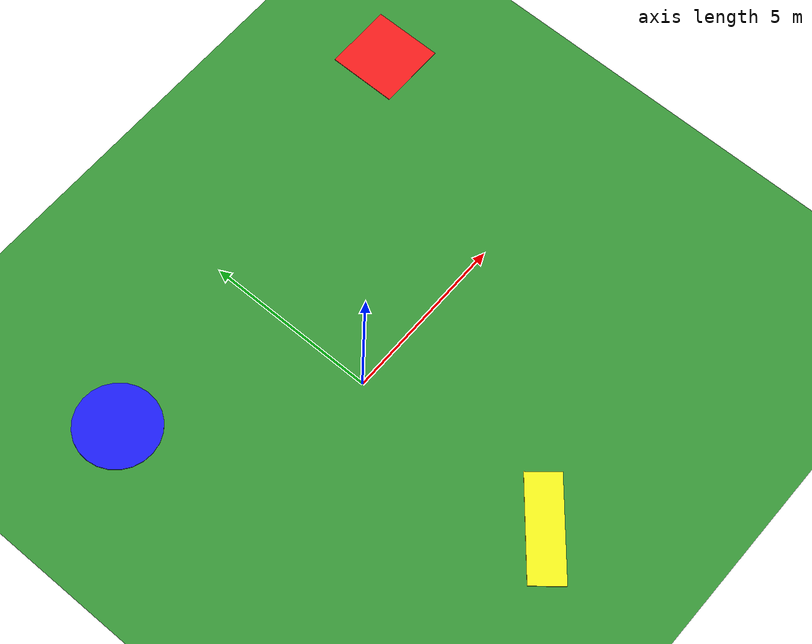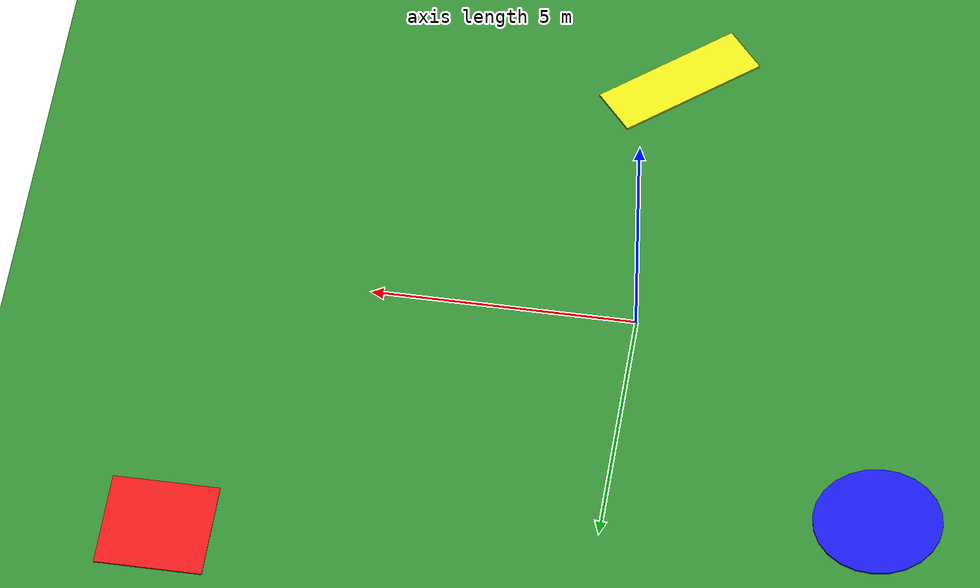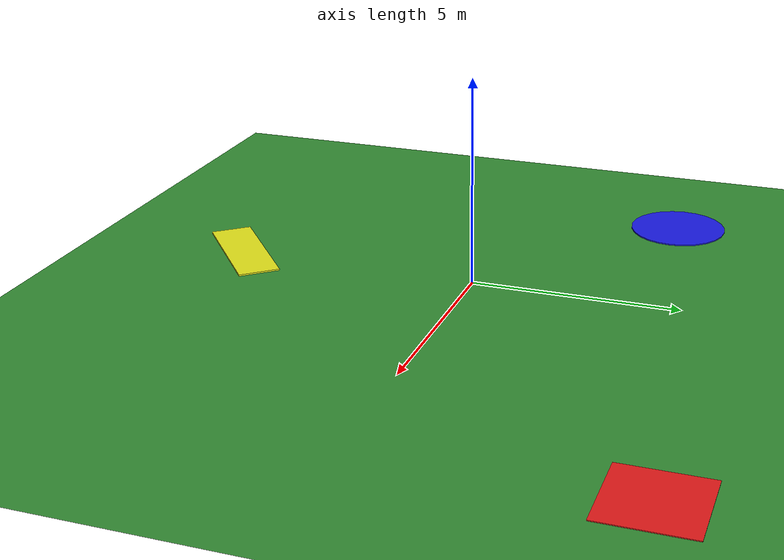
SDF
<?xml version="1.0"?>
<sdf version="1.9">
  <world name="mosaic_world">
    <plugin filename="gz-sim-physics-system" name="gz::sim::systems::Physics"/>
    <plugin filename="gz-sim-scene-broadcaster-system" name="gz::sim::systems::SceneBroadcaster"/>
    <plugin filename="gz-sim-sensors-system" name="gz::sim::systems::Sensors">
      <render_engine>ogre2</render_engine>
    </plugin>
    <plugin filename="gz-sim-user-commands-system" name="gz::sim::systems::UserCommands"/>

    <light name="sun" type="directional">
      <cast_shadows>true</cast_shadows>
      <pose>0 0 30 0 0 0</pose>
      <diffuse>0.9 0.9 0.9 1</diffuse>
      <specular>0.1 0.1 0.1 1</specular>
      <attenuation>
        <range>1000</range>
        <constant>0.9</constant>
        <linear>0.01</linear>
        <quadratic>0.001</quadratic>
      </attenuation>
      <direction>-0.5 0.2 -1</direction>
    </light>

    <model name="ground_plane">
      <static>true</static>
      <link name="ground_link">
        <collision name="collision">
          <geometry>
            <plane>
              <normal>0 0 1</normal>
              <size>80 80</size>
            </plane>
          </geometry>
        </collision>
        <visual name="visual">
          <geometry>
            <plane>
              <normal>0 0 1</normal>
              <size>80 80</size>
            </plane>
          </geometry>
          <material>
            <ambient>0.2 0.55 0.2 1</ambient>
            <diffuse>0.2 0.55 0.2 1</diffuse>
          </material>
        </visual>
      </link>
    </model>

    <model name="marker_a">
      <static>true</static>
      <pose>8 6 0.01 0 0 0</pose>
      <link name="link">
        <visual name="visual">
          <geometry><box><size>2.0 2.0 0.02</size></box></geometry>
          <material><ambient>0.9 0.1 0.1 1</ambient><diffuse>0.9 0.1 0.1 1</diffuse></material>
        </visual>
      </link>
    </model>

    <model name="marker_b">
      <static>true</static>
      <pose>-5 4 0.02 0 0 0.3</pose>
      <link name="link">
        <visual name="visual">
          <geometry><cylinder><radius>1.2</radius><length>0.03</length></cylinder></geometry>
          <material><ambient>0.1 0.1 0.9 1</ambient><diffuse>0.1 0.1 0.9 1</diffuse></material>
        </visual>
      </link>
    </model>

    <model name="marker_c">
      <static>true</static>
      <pose>0 -6 0.03 0 0 0.7</pose>
      <link name="link">
        <visual name="visual">
          <geometry><box><size>3.0 1.0 0.04</size></box></geometry>
          <material><ambient>0.9 0.9 0.1 1</ambient><diffuse>0.9 0.9 0.1 1</diffuse></material>
        </visual>
      </link>
    </model>

    <!-- Set gravity to zero -->
    <physics type="ignored">
      <gravity>0 0 0</gravity> <!-- Set gravity to zero in the world -->
      <max_step_size>0.004</max_step_size>
      <real_time_factor>1.0</real_time_factor>
    </physics>
  </world>
</sdf>
